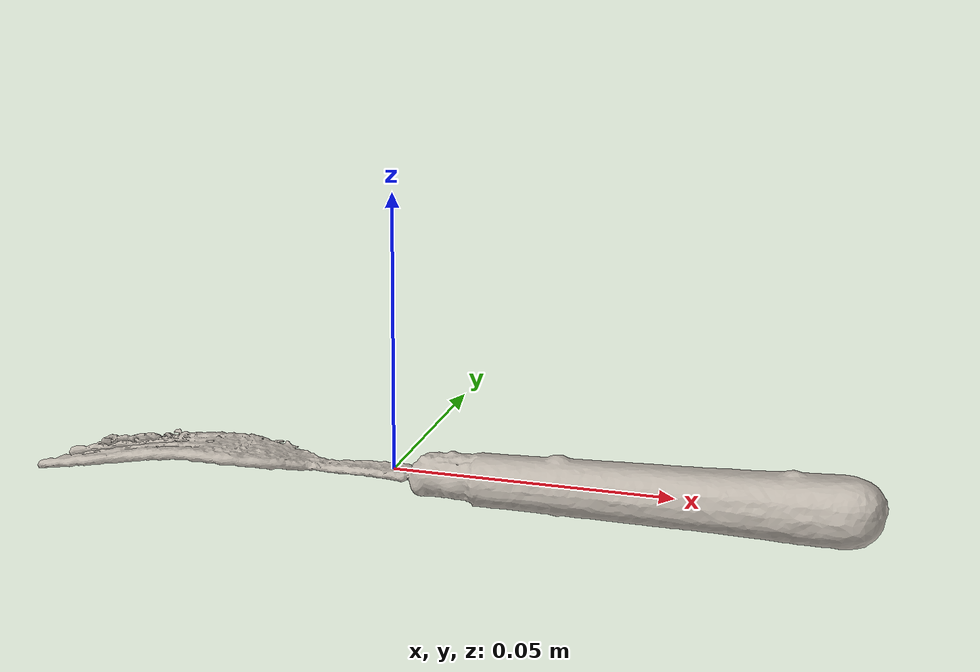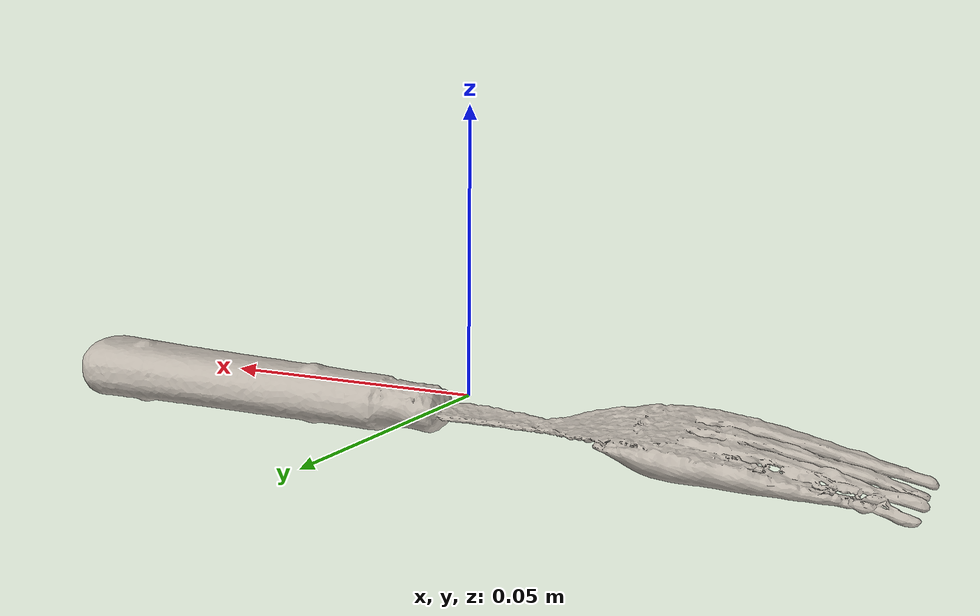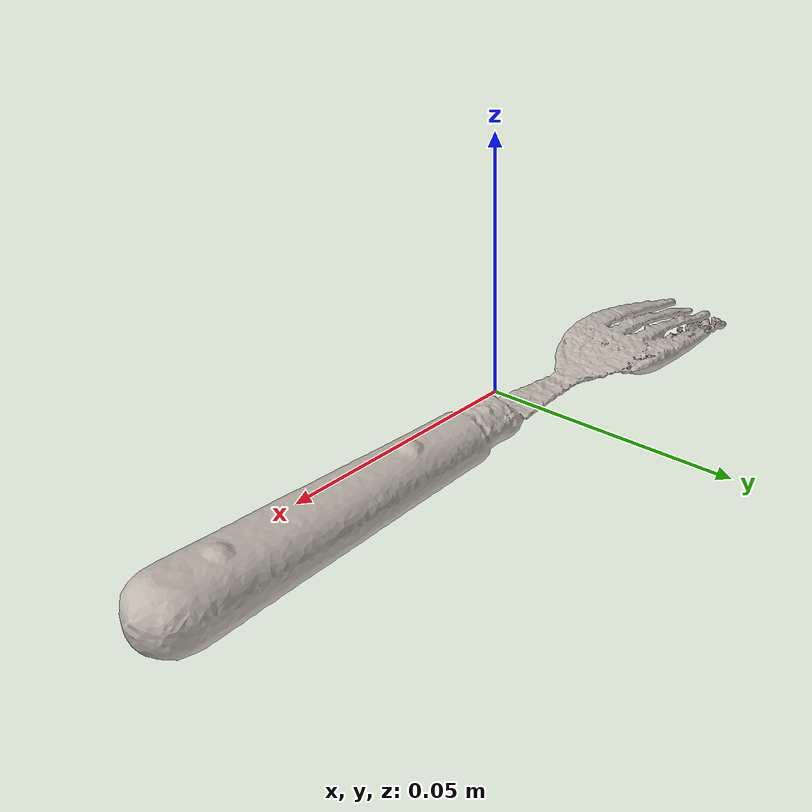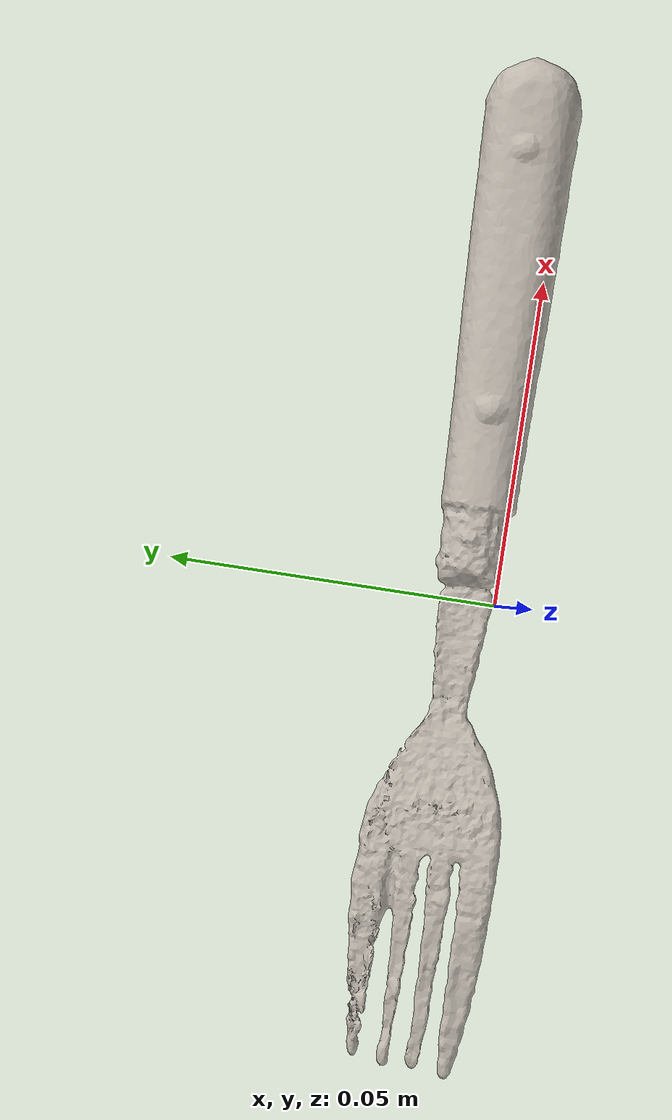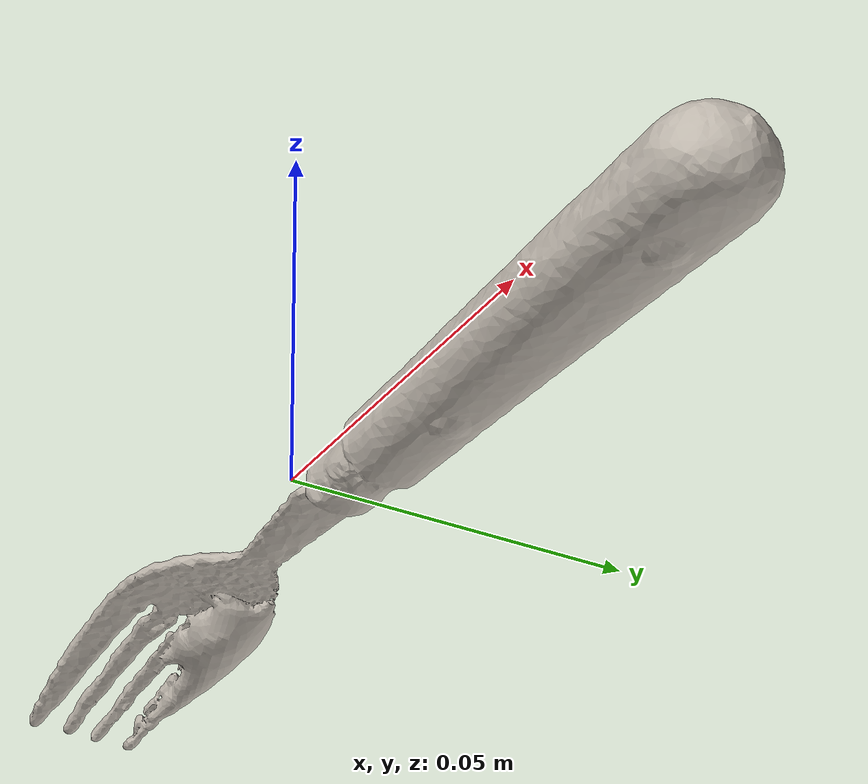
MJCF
<mujoco model="bread">
  <asset>
    <mesh file="nontextured.stl" name="obj_mesh" scale="0.8 0.8 0.8"/>
    <texture file="../../../../../textures/bread.png" type="2d" name="tex-bread" />
    <material name="bread" reflectance="0.7" texrepeat="15 15" texture="tex-bread" texuniform="true"/>
  </asset>
  <worldbody>
    <body>
      <body name="collision">
        <geom pos="0.025410000000000002 0.022295 -0.0070420000000000005" mesh="obj_mesh" type="mesh" solimp="0.998 0.998 0.001" solref="0.001 1" density="50" friction="0.95 0.3 0.1"  material="bread" group="1" condim="4"/>
      </body>
      <body name="visual">
        <geom pos="0.025410000000000002 0.022295 -0.0070420000000000005" mesh="obj_mesh" type="mesh" material="bread"  conaffinity="0" contype="0"  group="0" mass="0.0001"/>
        <geom pos="0.025410000000000002 0.022295 -0.0070420000000000005" mesh="obj_mesh" type="mesh" material="bread"  conaffinity="0" contype="0"  group="1" mass="0.0001"/>
      </body>
      <site rgba="0 0 0 0" size="0.005" pos="0 0 -0.007942000000000001" name="bottom_site"/>
      <site rgba="0 0 0 0" size="0.005" pos="0 0 0.007942000000000001" name="top_site"/>
      <site rgba="0 0 0 0" size="0.005" pos="0.098778 0.013555000000000001 0.007942000000000001" name="horizontal_radius_site"/>
    </body>
  </worldbody>
</mujoco>
